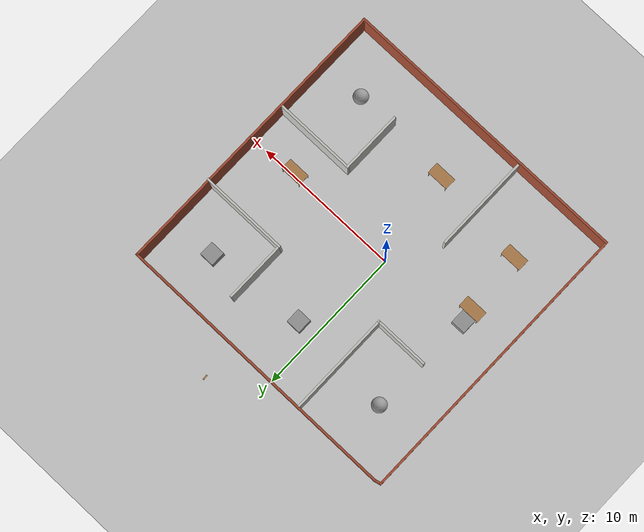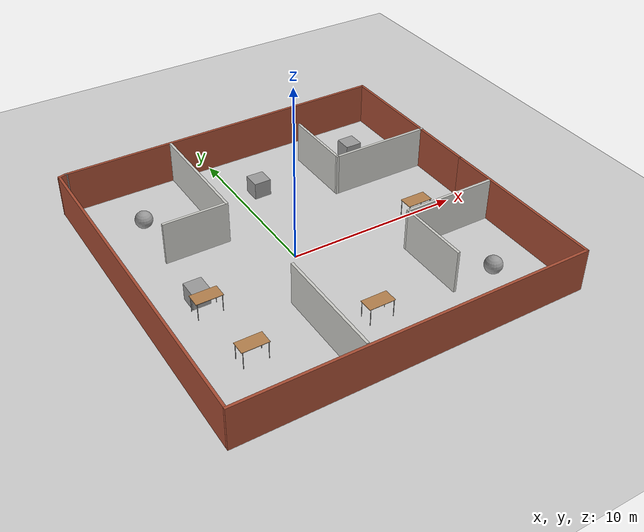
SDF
<sdf version="1.7">
 <world name="default">
  <light name="sun" type="directional">
   <pose>0 0 10 0 -0 0</pose>
   <diffuse>0.8 0.8 0.8 1</diffuse>
   <specular>0.2 0.2 0.2 1</specular>
   <attenuation>
    <range>1000</range>
    <constant>0.9</constant>
    <linear>0.01</linear>
    <quadratic>0.001</quadratic>
   </attenuation>
   <direction>-0.5 0.1 -0.9</direction>
   <spot><inner_angle>0</inner_angle><outer_angle>0</outer_angle><falloff>0</falloff></spot>
  </light>
  <model name="ground_plane">
   <static>1</static>
   <link name="link">
    <collision name="collision">
     <geometry><plane><normal>0 0 1</normal><size>100 100</size></plane></geometry>
     <surface>
      <contact><collide_bitmask>65535</collide_bitmask></contact>
      <friction><ode><mu>100</mu><mu2>50</mu2></ode></friction>
     </surface>
    </collision>
    <visual name="visual">
     <cast_shadows>0</cast_shadows>
     <geometry><plane><normal>0 0 1</normal><size>100 100</size></plane></geometry>
     <material>
      <script><uri>file://media/materials/scripts/gazebo.material</uri><name>Gazebo/Grey</name></script>
     </material>
    </visual>
   </link>
  </model>
  <gravity>0 0 -9.8</gravity>
  <magnetic_field>6e-06 2.3e-05 -4.2e-05</magnetic_field>
  <atmosphere type="adiabatic"/>
  <physics type="ode">
   <max_step_size>0.001</max_step_size>
   <real_time_factor>1</real_time_factor>
   <real_time_update_rate>1000</real_time_update_rate>
  </physics>
  <scene><ambient>0.4 0.4 0.4 1</ambient><background>0.7 0.7 0.7 1</background><shadows>1</shadows></scene>
  <spherical_coordinates>
   <surface_model>EARTH_WGS84</surface_model>
   <latitude_deg>0</latitude_deg>
   <longitude_deg>0</longitude_deg>
   <elevation>0</elevation>
   <heading_deg>0</heading_deg>
  </spherical_coordinates>
  <model name="my-world">
   <pose>0.963166 0.202462 0 0 -0 0</pose>
   <link name="Wall_0">
    <collision name="Wall_0_Collision">
     <geometry><box><size>20 0.15 2.5</size></box></geometry>
     <pose>0 0 1.25 0 -0 0</pose>
    </collision>
    <visual name="Wall_0_Visual">
     <pose>0 0 1.25 0 -0 0</pose>
     <geometry><box><size>20 0.15 2.5</size></box></geometry>
     <material>
      <script><uri>file://media/materials/scripts/gazebo.material</uri><name>Gazebo/Bricks</name></script>
      <ambient>1 1 1 1</ambient>
     </material>
     <meta><layer>0</layer></meta>
    </visual>
    <pose>-0.010321 -9.85787 0 0 -0 0</pose>
   </link>
   <link name="Wall_1">
    <collision name="Wall_1_Collision">
     <geometry><box><size>10 0.15 2.5</size></box></geometry>
     <pose>0 0 1.25 0 -0 0</pose>
    </collision>
    <visual name="Wall_1_Visual">
     <pose>0 0 1.25 0 -0 0</pose>
     <geometry><box><size>10 0.15 2.5</size></box></geometry>
     <material>
      <script><uri>file://media/materials/scripts/gazebo.material</uri><name>Gazebo/Bricks</name></script>
      <ambient>1 1 1 1</ambient>
     </material>
     <meta><layer>0</layer></meta>
    </visual>
    <pose>9.91468 -4.93286 0 0 -0 1.5708</pose>
   </link>
   <link name="Wall_10">
    <collision name="Wall_10_Collision">
     <geometry><box><size>0.15 0.15 2.5</size></box></geometry>
     <pose>0 0 1.25 0 -0 0</pose>
    </collision>
    <visual name="Wall_10_Visual">
     <pose>0 0 1.25 0 -0 0</pose>
     <geometry><box><size>0.15 0.15 2.5</size></box></geometry>
     <material>
      <script><uri>file://media/materials/scripts/gazebo.material</uri><name>Gazebo/Grey</name></script>
      <ambient>1 1 1 1</ambient>
     </material>
     <meta><layer>0</layer></meta>
    </visual>
    <pose>-9.52841 9.84214 0 0 -0 0</pose>
   </link>
   <link name="Wall_13">
    <collision name="Wall_13_Collision">
     <geometry><box><size>19.75 0.15 2.5</size></box></geometry>
     <pose>0 0 1.25 0 -0 0</pose>
    </collision>
    <visual name="Wall_13_Visual">
     <pose>0 0 1.25 0 -0 0</pose>
     <geometry><box><size>19.75 0.15 2.5</size></box></geometry>
     <material>
      <script><uri>file://media/materials/scripts/gazebo.material</uri><name>Gazebo/Bricks</name></script>
      <ambient>1 1 1 1</ambient>
     </material>
     <meta><layer>0</layer></meta>
    </visual>
    <pose>-9.93532 -0.057865 0 0 -0 1.5708</pose>
   </link>
   <link name="Wall_15">
    <collision name="Wall_15_Collision">
     <geometry><box><size>0.56902 0.15 2.5</size></box></geometry>
     <pose>0 0 1.25 0 -0 0</pose>
    </collision>
    <visual name="Wall_15_Visual">
     <pose>0 0 1.25 0 -0 0</pose>
     <geometry><box><size>0.56902 0.15 2.5</size></box></geometry>
     <material>
      <script><uri>file://media/materials/scripts/gazebo.material</uri><name>Gazebo/Bricks</name></script>
      <ambient>1 1 1 1</ambient>
     </material>
     <meta><layer>0</layer></meta>
    </visual>
    <pose>-9.73186 9.79214 0 0 -0 -2.90062</pose>
   </link>
   <link name="Wall_17">
    <collision name="Wall_17_Collision">
     <geometry><box><size>7 0.15 2.5</size></box></geometry>
     <pose>0 0 1.25 0 -0 0</pose>
    </collision>
    <visual name="Wall_17_Visual">
     <pose>0 0 1.25 0 -0 0</pose>
     <geometry><box><size>7 0.15 2.5</size></box></geometry>
     <material>
      <script><uri>file://media/materials/scripts/gazebo.material</uri><name>Gazebo/CeilingTiled</name></script>
      <ambient>1 1 1 1</ambient>
     </material>
     <meta><layer>0</layer></meta>
    </visual>
    <pose>-3.30808 6.29731 0 0 -0 -1.5708</pose>
   </link>
   <link name="Wall_18">
    <collision name="Wall_18_Collision">
     <geometry><box><size>3.75 0.15 2.5</size></box></geometry>
     <pose>0 0 1.25 0 -0 0</pose>
    </collision>
    <visual name="Wall_18_Visual">
     <pose>0 0 1.25 0 -0 0</pose>
     <geometry><box><size>3.75 0.15 2.5</size></box></geometry>
     <material>
      <script><uri>file://media/materials/scripts/gazebo.material</uri><name>Gazebo/CeilingTiled</name></script>
      <ambient>1 1 1 1</ambient>
     </material>
     <meta><layer>0</layer></meta>
    </visual>
    <pose>-5.10808 2.87231 0 0 -0 3.14159</pose>
   </link>
   <link name="Wall_20">
    <collision name="Wall_20_Collision">
     <geometry><box><size>6.5 0.15 2.5</size></box></geometry>
     <pose>0 0 1.25 0 -0 0</pose>
    </collision>
    <visual name="Wall_20_Visual">
     <pose>0 0 1.25 0 -0 0</pose>
     <geometry><box><size>6.5 0.15 2.5</size></box></geometry>
     <material>
      <script><uri>file://media/materials/scripts/gazebo.material</uri><name>Gazebo/CeilingTiled</name></script>
      <ambient>1 1 1 1</ambient>
     </material>
     <meta><layer>0</layer></meta>
    </visual>
    <pose>-2.9158 -6.48143 0 0 -0 1.5708</pose>
   </link>
   <link name="Wall_22">
    <collision name="Wall_22_Collision">
     <geometry><box><size>5.5 0.15 2.5</size></box></geometry>
     <pose>0 0 1.25 0 -0 0</pose>
    </collision>
    <visual name="Wall_22_Visual">
     <pose>0 0 1.25 0 -0 0</pose>
     <geometry><box><size>5.5 0.15 2.5</size></box></geometry>
     <material>
      <script><uri>file://media/materials/scripts/gazebo.material</uri><name>Gazebo/CeilingTiled</name></script>
      <ambient>1 1 1 1</ambient>
     </material>
     <meta><layer>0</layer></meta>
    </visual>
    <pose>7.11914 -2.59535 0 0 -0 3.14159</pose>
   </link>
   <link name="Wall_23">
    <collision name="Wall_23_Collision">
     <geometry><box><size>4.25 0.15 2.5</size></box></geometry>
     <pose>0 0 1.25 0 -0 0</pose>
    </collision>
    <visual name="Wall_23_Visual">
     <pose>0 0 1.25 0 -0 0</pose>
     <geometry><box><size>4.25 0.15 2.5</size></box></geometry>
     <material>
      <script><uri>file://media/materials/scripts/gazebo.material</uri><name>Gazebo/CeilingTiled</name></script>
      <ambient>1 1 1 1</ambient>
     </material>
     <meta><layer>0</layer></meta>
    </visual>
    <pose>4.44414 -4.64535 0 0 -0 -1.5708</pose>
   </link>
   <link name="Wall_25">
    <collision name="Wall_25_Collision">
     <geometry><box><size>6 0.15 2.5</size></box></geometry>
     <pose>0 0 1.25 0 -0 0</pose>
    </collision>
    <visual name="Wall_25_Visual">
     <pose>0 0 1.25 0 -0 0</pose>
     <geometry><box><size>6 0.15 2.5</size></box></geometry>
     <material>
      <script><uri>file://media/materials/scripts/gazebo.material</uri><name>Gazebo/CeilingTiled</name></script>
      <ambient>1 1 1 1</ambient>
     </material>
     <meta><layer>0</layer></meta>
    </visual>
    <pose>7.02605 3.68116 0 0 -0 3.14159</pose>
   </link>
   <link name="Wall_26">
    <collision name="Wall_26_Collision">
     <geometry><box><size>4.25 0.15 2.5</size></box></geometry>
     <pose>0 0 1.25 0 -0 0</pose>
    </collision>
    <visual name="Wall_26_Visual">
     <pose>0 0 1.25 0 -0 0</pose>
     <geometry><box><size>4.25 0.15 2.5</size></box></geometry>
     <material>
      <script><uri>file://media/materials/scripts/gazebo.material</uri><name>Gazebo/CeilingTiled</name></script>
      <ambient>1 1 1 1</ambient>
     </material>
     <meta><layer>0</layer></meta>
    </visual>
    <pose>4.10105 5.73116 0 0 -0 1.5708</pose>
   </link>
   <link name="Wall_4">
    <collision name="Wall_4_Collision">
     <geometry><box><size>10 0.15 2.5</size></box></geometry>
     <pose>0 0 1.25 0 -0 0</pose>
    </collision>
    <visual name="Wall_4_Visual">
     <pose>0 0 1.25 0 -0 0</pose>
     <geometry><box><size>10 0.15 2.5</size></box></geometry>
     <material>
      <script><uri>file://media/materials/scripts/gazebo.material</uri><name>Gazebo/Bricks</name></script>
      <ambient>1 1 1 1</ambient>
     </material>
     <meta><layer>0</layer></meta>
    </visual>
    <pose>9.91468 4.91714 0 0 -0 1.5708</pose>
   </link>
   <link name="Wall_9">
    <collision name="Wall_9_Collision">
     <geometry><box><size>19.5931 0.15 2.5</size></box></geometry>
     <pose>0 0 1.25 0 -0 0</pose>
    </collision>
    <visual name="Wall_9_Visual">
     <pose>0 0 1.25 0 -0 0</pose>
     <geometry><box><size>19.5931 0.15 2.5</size></box></geometry>
     <material>
      <script><uri>file://media/materials/scripts/gazebo.material</uri><name>Gazebo/Bricks</name></script>
      <ambient>1 1 1 1</ambient>
     </material>
     <meta><layer>0</layer></meta>
    </visual>
    <pose>0.193136 9.84214 0 0 -0 3.14159</pose>
   </link>
   <static>1</static>
  </model>
  <model name="unit_sphere">
   <pose>-5.69077 6.58391 0.5 0 -0 0</pose>
   <link name="link">
    <inertial>
     <mass>1</mass>
     <inertia><ixx>0.1</ixx><ixy>0</ixy><ixz>0</ixz><iyy>0.1</iyy><iyz>0</iyz><izz>0.1</izz></inertia>
    </inertial>
    <collision name="collision"><geometry><sphere><radius>0.5</radius></sphere></geometry></collision>
    <visual name="visual">
     <geometry><sphere><radius>0.5</radius></sphere></geometry>
     <material>
      <script><name>Gazebo/Grey</name><uri>file://media/materials/scripts/gazebo.material</uri></script>
     </material>
    </visual>
   </link>
  </model>
  <model name="unit_box">
   <pose>1.27685 6.24948 0.499995 -1e-05 -0 -0</pose>
   <link name="link">
    <inertial>
     <mass>1</mass>
     <inertia>
      <ixx>0.166667</ixx>
      <ixy>0</ixy>
      <ixz>0</ixz>
      <iyy>0.166667</iyy>
      <iyz>0</iyz>
      <izz>0.166667</izz>
     </inertia>
    </inertial>
    <collision name="collision"><geometry><box><size>1 1 1</size></box></geometry></collision>
    <visual name="visual">
     <geometry><box><size>1 1 1</size></box></geometry>
     <material>
      <script><name>Gazebo/Grey</name><uri>file://media/materials/scripts/gazebo.material</uri></script>
     </material>
    </visual>
   </link>
  </model>
  <model name="unit_box_0">
   <pose>7.88216 6.89051 0.499995 -1e-05 -0 -0</pose>
   <link name="link">
    <inertial>
     <mass>1</mass>
     <inertia>
      <ixx>0.166667</ixx>
      <ixy>0</ixy>
      <ixz>0</ixz>
      <iyy>0.166667</iyy>
      <iyz>0</iyz>
      <izz>0.166667</izz>
     </inertia>
    </inertial>
    <collision name="collision"><geometry><box><size>1 1 1</size></box></geometry></collision>
    <visual name="visual">
     <geometry><box><size>1 1 1</size></box></geometry>
     <material>
      <script><name>Gazebo/Grey</name><uri>file://media/materials/scripts/gazebo.material</uri></script>
     </material>
    </visual>
   </link>
  </model>
  <model name="wooden_board">
   <link name="base">
    <pose>0 0 0.00523 0 -0 0</pose>
    <inertial>
     <mass>0.2765</mass>
     <inertia>
      <ixx>0.0025148</ixx>
      <ixy>0</ixy>
      <ixz>0</ixz>
      <iyy>0.00024037</iyy>
      <iyz>0</iyz>
      <izz>0.00275013</izz>
     </inertia>
    </inertial>
    <collision name="collision">
     <geometry><box><size>0.1016 0.3302 0.01046</size></box></geometry>
     <surface>
      <contact>
       <poissons_ratio>0.347</poissons_ratio>
       <elastic_modulus>8.8e+09</elastic_modulus>
       <ode><kp>100000</kp><kd>100</kd><max_vel>100</max_vel><min_depth>0.001</min_depth></ode>
      </contact>
      <friction>
       <torsional>
        <coefficient>1</coefficient>
        <use_patch_radius>0</use_patch_radius>
        <surface_radius>0.01</surface_radius>
       </torsional>
      </friction>
     </surface>
    </collision>
    <visual name="visual">
     <geometry><box><size>0.1016 0.3302 0.01046</size></box></geometry>
     <material>
      <script><uri>file://media/materials/scripts/gazebo.material</uri><name>Gazebo/Wood</name></script>
     </material>
    </visual>
    <visual name="tee_nut_1">
     <pose>0 -0.116 0 0 -0 0</pose>
     <geometry><cylinder><radius>0.00635</radius><length>0.0105646</length></cylinder></geometry>
     <material>
      <script><uri>file://media/materials/scripts/gazebo.material</uri><name>Gazebo/Grey</name></script>
     </material>
    </visual>
    <visual name="tee_nut_2">
     <pose>0 -0.038 0 0 -0 0</pose>
     <geometry><cylinder><radius>0.00635</radius><length>0.0105646</length></cylinder></geometry>
     <material>
      <script><uri>file://media/materials/scripts/gazebo.material</uri><name>Gazebo/Grey</name></script>
     </material>
    </visual>
    <visual name="tee_nut_3">
     <pose>0 0.038 0 0 -0 0</pose>
     <geometry><cylinder><radius>0.00635</radius><length>0.0105646</length></cylinder></geometry>
     <material>
      <script><uri>file://media/materials/scripts/gazebo.material</uri><name>Gazebo/Grey</name></script>
     </material>
    </visual>
    <visual name="tee_nut_4">
     <pose>0 0.116 0 0 -0 0</pose>
     <geometry><cylinder><radius>0.00635</radius><length>0.0105646</length></cylinder></geometry>
     <material>
      <script><uri>file://media/materials/scripts/gazebo.material</uri><name>Gazebo/Grey</name></script>
     </material>
    </visual>
   </link>
   <pose>3.10745 12.5631 -0.001007 0 -0 0</pose>
  </model>
  <model name="table">
   <static>1</static>
   <link name="link">
    <collision name="surface">
     <pose>0 0 1 0 -0 0</pose>
     <geometry><box><size>1.5 0.8 0.03</size></box></geometry>
     <surface><friction><ode><mu>0.6</mu><mu2>0.6</mu2></ode></friction></surface>
    </collision>
    <visual name="visual1">
     <pose>0 0 1 0 -0 0</pose>
     <geometry><box><size>1.5 0.8 0.03</size></box></geometry>
     <material>
      <script><uri>file://media/materials/scripts/gazebo.material</uri><name>Gazebo/Wood</name></script>
     </material>
    </visual>
    <collision name="front_left_leg">
     <pose>0.68 0.38 0.5 0 -0 0</pose>
     <geometry><cylinder><radius>0.02</radius><length>1</length></cylinder></geometry>
    </collision>
    <visual name="front_left_leg">
     <pose>0.68 0.38 0.5 0 -0 0</pose>
     <geometry><cylinder><radius>0.02</radius><length>1</length></cylinder></geometry>
     <material>
      <script><uri>file://media/materials/scripts/gazebo.material</uri><name>Gazebo/Grey</name></script>
     </material>
    </visual>
    <collision name="front_right_leg">
     <pose>0.68 -0.38 0.5 0 -0 0</pose>
     <geometry><cylinder><radius>0.02</radius><length>1</length></cylinder></geometry>
    </collision>
    <visual name="front_right_leg">
     <pose>0.68 -0.38 0.5 0 -0 0</pose>
     <geometry><cylinder><radius>0.02</radius><length>1</length></cylinder></geometry>
     <material>
      <script><uri>file://media/materials/scripts/gazebo.material</uri><name>Gazebo/Grey</name></script>
     </material>
    </visual>
    <collision name="back_right_leg">
     <pose>-0.68 -0.38 0.5 0 -0 0</pose>
     <geometry><cylinder><radius>0.02</radius><length>1</length></cylinder></geometry>
    </collision>
    <visual name="back_right_leg">
     <pose>-0.68 -0.38 0.5 0 -0 0</pose>
     <geometry><cylinder><radius>0.02</radius><length>1</length></cylinder></geometry>
     <material>
      <script><uri>file://media/materials/scripts/gazebo.material</uri><name>Gazebo/Grey</name></script>
     </material>
    </visual>
    <collision name="back_left_leg">
     <pose>-0.68 0.38 0.5 0 -0 0</pose>
     <geometry><cylinder><radius>0.02</radius><length>1</length></cylinder></geometry>
    </collision>
    <visual name="back_left_leg">
     <pose>-0.68 0.38 0.5 0 -0 0</pose>
     <geometry><cylinder><radius>0.02</radius><length>1</length></cylinder></geometry>
     <material>
      <script><uri>file://media/materials/scripts/gazebo.material</uri><name>Gazebo/Grey</name></script>
     </material>
    </visual>
   </link>
   <pose>7.68277 -0.143713 0 0 -0 0</pose>
  </model>
  <model name="table_0">
   <static>1</static>
   <link name="link">
    <collision name="surface">
     <pose>0 0 1 0 -0 0</pose>
     <geometry><box><size>1.5 0.8 0.03</size></box></geometry>
     <surface><friction><ode><mu>0.6</mu><mu2>0.6</mu2></ode></friction></surface>
    </collision>
    <visual name="visual1">
     <pose>0 0 1 0 -0 0</pose>
     <geometry><box><size>1.5 0.8 0.03</size></box></geometry>
     <material>
      <script><uri>file://media/materials/scripts/gazebo.material</uri><name>Gazebo/Wood</name></script>
     </material>
    </visual>
    <collision name="front_left_leg">
     <pose>0.68 0.38 0.5 0 -0 0</pose>
     <geometry><cylinder><radius>0.02</radius><length>1</length></cylinder></geometry>
    </collision>
    <visual name="front_left_leg">
     <pose>0.68 0.38 0.5 0 -0 0</pose>
     <geometry><cylinder><radius>0.02</radius><length>1</length></cylinder></geometry>
     <material>
      <script><uri>file://media/materials/scripts/gazebo.material</uri><name>Gazebo/Grey</name></script>
     </material>
    </visual>
    <collision name="front_right_leg">
     <pose>0.68 -0.38 0.5 0 -0 0</pose>
     <geometry><cylinder><radius>0.02</radius><length>1</length></cylinder></geometry>
    </collision>
    <visual name="front_right_leg">
     <pose>0.68 -0.38 0.5 0 -0 0</pose>
     <geometry><cylinder><radius>0.02</radius><length>1</length></cylinder></geometry>
     <material>
      <script><uri>file://media/materials/scripts/gazebo.material</uri><name>Gazebo/Grey</name></script>
     </material>
    </visual>
    <collision name="back_right_leg">
     <pose>-0.68 -0.38 0.5 0 -0 0</pose>
     <geometry><cylinder><radius>0.02</radius><length>1</length></cylinder></geometry>
    </collision>
    <visual name="back_right_leg">
     <pose>-0.68 -0.38 0.5 0 -0 0</pose>
     <geometry><cylinder><radius>0.02</radius><length>1</length></cylinder></geometry>
     <material>
      <script><uri>file://media/materials/scripts/gazebo.material</uri><name>Gazebo/Grey</name></script>
     </material>
    </visual>
    <collision name="back_left_leg">
     <pose>-0.68 0.38 0.5 0 -0 0</pose>
     <geometry><cylinder><radius>0.02</radius><length>1</length></cylinder></geometry>
    </collision>
    <visual name="back_left_leg">
     <pose>-0.68 0.38 0.5 0 -0 0</pose>
     <geometry><cylinder><radius>0.02</radius><length>1</length></cylinder></geometry>
     <material>
      <script><uri>file://media/materials/scripts/gazebo.material</uri><name>Gazebo/Grey</name></script>
     </material>
    </visual>
   </link>
   <pose>-5.53115 -5.45954 0 0 -0 0</pose>
  </model>
  <model name="unit_box_1">
   <pose>-5.94071 -0.516323 0.499995 -1e-05 -0 0.000143</pose>
   <link name="link">
    <inertial>
     <mass>1</mass>
     <inertia>
      <ixx>0.166667</ixx>
      <ixy>0</ixy>
      <ixz>0</ixz>
      <iyy>0.166667</iyy>
      <iyz>0</iyz>
      <izz>0.166667</izz>
     </inertia>
    </inertial>
    <collision name="collision"><geometry><box><size>1 1 1</size></box></geometry></collision>
    <visual name="visual">
     <geometry><box><size>1 1 1</size></box></geometry>
     <material>
      <script><name>Gazebo/Grey</name><uri>file://media/materials/scripts/gazebo.material</uri></script>
     </material>
    </visual>
   </link>
  </model>
  <model name="table_1">
   <static>1</static>
   <link name="link">
    <collision name="surface">
     <pose>0 0 1 0 -0 0</pose>
     <geometry><box><size>1.5 0.8 0.03</size></box></geometry>
     <surface><friction><ode><mu>0.6</mu><mu2>0.6</mu2></ode></friction></surface>
    </collision>
    <visual name="visual1">
     <pose>0 0 1 0 -0 0</pose>
     <geometry><box><size>1.5 0.8 0.03</size></box></geometry>
     <material>
      <script><uri>file://media/materials/scripts/gazebo.material</uri><name>Gazebo/Wood</name></script>
     </material>
    </visual>
    <collision name="front_left_leg">
     <pose>0.68 0.38 0.5 0 -0 0</pose>
     <geometry><cylinder><radius>0.02</radius><length>1</length></cylinder></geometry>
    </collision>
    <visual name="front_left_leg">
     <pose>0.68 0.38 0.5 0 -0 0</pose>
     <geometry><cylinder><radius>0.02</radius><length>1</length></cylinder></geometry>
     <material>
      <script><uri>file://media/materials/scripts/gazebo.material</uri><name>Gazebo/Grey</name></script>
     </material>
    </visual>
    <collision name="front_right_leg">
     <pose>0.68 -0.38 0.5 0 -0 0</pose>
     <geometry><cylinder><radius>0.02</radius><length>1</length></cylinder></geometry>
    </collision>
    <visual name="front_right_leg">
     <pose>0.68 -0.38 0.5 0 -0 0</pose>
     <geometry><cylinder><radius>0.02</radius><length>1</length></cylinder></geometry>
     <material>
      <script><uri>file://media/materials/scripts/gazebo.material</uri><name>Gazebo/Grey</name></script>
     </material>
    </visual>
    <collision name="back_right_leg">
     <pose>-0.68 -0.38 0.5 0 -0 0</pose>
     <geometry><cylinder><radius>0.02</radius><length>1</length></cylinder></geometry>
    </collision>
    <visual name="back_right_leg">
     <pose>-0.68 -0.38 0.5 0 -0 0</pose>
     <geometry><cylinder><radius>0.02</radius><length>1</length></cylinder></geometry>
     <material>
      <script><uri>file://media/materials/scripts/gazebo.material</uri><name>Gazebo/Grey</name></script>
     </material>
    </visual>
    <collision name="back_left_leg">
     <pose>-0.68 0.38 0.5 0 -0 0</pose>
     <geometry><cylinder><radius>0.02</radius><length>1</length></cylinder></geometry>
    </collision>
    <visual name="back_left_leg">
     <pose>-0.68 0.38 0.5 0 -0 0</pose>
     <geometry><cylinder><radius>0.02</radius><length>1</length></cylinder></geometry>
     <material>
      <script><uri>file://media/materials/scripts/gazebo.material</uri><name>Gazebo/Grey</name></script>
     </material>
    </visual>
   </link>
   <pose>-5.84617 -1.42731 0 0 -0 0</pose>
  </model>
  <model name="unit_sphere_0">
   <pose>8.04626 -6.34157 0.5 0 -0 0</pose>
   <link name="link">
    <inertial>
     <mass>1</mass>
     <inertia><ixx>0.1</ixx><ixy>0</ixy><ixz>0</ixz><iyy>0.1</iyy><iyz>0</iyz><izz>0.1</izz></inertia>
    </inertial>
    <collision name="collision"><geometry><sphere><radius>0.5</radius></sphere></geometry></collision>
    <visual name="visual">
     <geometry><sphere><radius>0.5</radius></sphere></geometry>
     <material>
      <script><name>Gazebo/Grey</name><uri>file://media/materials/scripts/gazebo.material</uri></script>
     </material>
    </visual>
   </link>
  </model>
  <model name="table_2">
   <static>1</static>
   <link name="link">
    <collision name="surface">
     <pose>0 0 1 0 -0 0</pose>
     <geometry><box><size>1.5 0.8 0.03</size></box></geometry>
     <surface><friction><ode><mu>0.6</mu><mu2>0.6</mu2></ode></friction></surface>
    </collision>
    <visual name="visual1">
     <pose>0 0 1 0 -0 0</pose>
     <geometry><box><size>1.5 0.8 0.03</size></box></geometry>
     <material>
      <script><uri>file://media/materials/scripts/gazebo.material</uri><name>Gazebo/Wood</name></script>
     </material>
    </visual>
    <collision name="front_left_leg">
     <pose>0.68 0.38 0.5 0 -0 0</pose>
     <geometry><cylinder><radius>0.02</radius><length>1</length></cylinder></geometry>
    </collision>
    <visual name="front_left_leg">
     <pose>0.68 0.38 0.5 0 -0 0</pose>
     <geometry><cylinder><radius>0.02</radius><length>1</length></cylinder></geometry>
     <material>
      <script><uri>file://media/materials/scripts/gazebo.material</uri><name>Gazebo/Grey</name></script>
     </material>
    </visual>
    <collision name="front_right_leg">
     <pose>0.68 -0.38 0.5 0 -0 0</pose>
     <geometry><cylinder><radius>0.02</radius><length>1</length></cylinder></geometry>
    </collision>
    <visual name="front_right_leg">
     <pose>0.68 -0.38 0.5 0 -0 0</pose>
     <geometry><cylinder><radius>0.02</radius><length>1</length></cylinder></geometry>
     <material>
      <script><uri>file://media/materials/scripts/gazebo.material</uri><name>Gazebo/Grey</name></script>
     </material>
    </visual>
    <collision name="back_right_leg">
     <pose>-0.68 -0.38 0.5 0 -0 0</pose>
     <geometry><cylinder><radius>0.02</radius><length>1</length></cylinder></geometry>
    </collision>
    <visual name="back_right_leg">
     <pose>-0.68 -0.38 0.5 0 -0 0</pose>
     <geometry><cylinder><radius>0.02</radius><length>1</length></cylinder></geometry>
     <material>
      <script><uri>file://media/materials/scripts/gazebo.material</uri><name>Gazebo/Grey</name></script>
     </material>
    </visual>
    <collision name="back_left_leg">
     <pose>-0.68 0.38 0.5 0 -0 0</pose>
     <geometry><cylinder><radius>0.02</radius><length>1</length></cylinder></geometry>
    </collision>
    <visual name="back_left_leg">
     <pose>-0.68 0.38 0.5 0 -0 0</pose>
     <geometry><cylinder><radius>0.02</radius><length>1</length></cylinder></geometry>
     <material>
      <script><uri>file://media/materials/scripts/gazebo.material</uri><name>Gazebo/Grey</name></script>
     </material>
    </visual>
   </link>
   <pose>1.05274 -6.05807 0 0 -0 0</pose>
  </model>
 </world>
</sdf>
